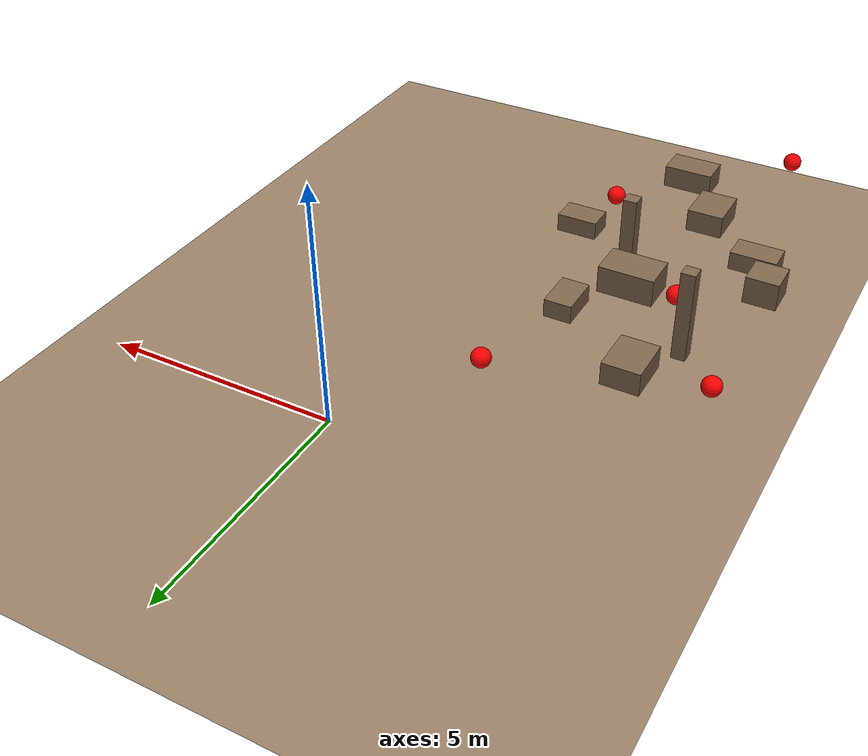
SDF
<sdf version="1.8">
 <world name="disaster_world">
  <physics name="1ms" type="ignored">
   <max_step_size>0.004</max_step_size>
   <real_time_factor>1.0</real_time_factor>
  </physics>
  <plugin filename="gz-sim-physics-system" name="gz::sim::systems::Physics"/>
  <plugin filename="gz-sim-scene-broadcaster-system" name="gz::sim::systems::SceneBroadcaster"/>
  <plugin filename="gz-sim-user-commands-system" name="gz::sim::systems::UserCommands"/>
  <plugin filename="gz-sim-sensors-system" name="gz::sim::systems::Sensors">
   <render_engine>ogre2</render_engine>
  </plugin>
  <plugin filename="gz-sim-imu-system" name="gz::sim::systems::Imu"/>
  <light name="sun" type="directional">
   <cast_shadows>false</cast_shadows>
   <pose>0 0 20 0 0 0</pose>
   <diffuse>1.0 1.0 1.0 1</diffuse>
   <specular>0.5 0.5 0.5 1</specular>
   <attenuation>
    <range>1000</range>
    <constant>0.9</constant>
    <linear>0.01</linear>
    <quadratic>0.001</quadratic>
   </attenuation>
   <direction>-0.3 0.1 -0.9</direction>
  </light>
  <light name="ambient_fill" type="directional">
   <cast_shadows>false</cast_shadows>
   <pose>0 0 10 0 0 0</pose>
   <diffuse>0.4 0.4 0.4 1</diffuse>
   <specular>0.1 0.1 0.1 1</specular>
   <direction>0.3 -0.1 -0.9</direction>
  </light>
  <model name="ground_plane">
   <static>true</static>
   <link name="link">
    <collision name="collision">
     <geometry><plane><normal>0 0 1</normal><size>50 50</size></plane></geometry>
    </collision>
    <visual name="visual">
     <geometry><plane><normal>0 0 1</normal><size>50 50</size></plane></geometry>
     <material><ambient>0.6 0.5 0.4 1</ambient><diffuse>0.6 0.5 0.4 1</diffuse></material>
    </visual>
   </link>
  </model>
  <model name="victim_1">
   <static>true</static>
   <pose>-4.61 -5.54 1.0 0 0 0</pose>
   <link name="link">
    <visual name="visual">
     <geometry><sphere><radius>0.2</radius></sphere></geometry>
     <material>
      <ambient>1.0 0.0 0.0 1</ambient>
      <diffuse>1.0 0.0 0.0 1</diffuse>
      <emissive>0.8 0.0 0.0 1</emissive>
     </material>
    </visual>
    <collision name="collision"><geometry><sphere><radius>0.2</radius></sphere></geometry></collision>
   </link>
  </model>
  <model name="victim_2">
   <static>true</static>
   <pose>-5.06 -11.97 1.0 0 0 0</pose>
   <link name="link">
    <visual name="visual">
     <geometry><sphere><radius>0.2</radius></sphere></geometry>
     <material>
      <ambient>1.0 0.0 0.0 1</ambient>
      <diffuse>1.0 0.0 0.0 1</diffuse>
      <emissive>0.8 0.0 0.0 1</emissive>
     </material>
    </visual>
    <collision name="collision"><geometry><sphere><radius>0.2</radius></sphere></geometry></collision>
   </link>
  </model>
  <model name="victim_3">
   <static>true</static>
   <pose>-2.05 -8.6 1.0 0 0 0</pose>
   <link name="link">
    <visual name="visual">
     <geometry><sphere><radius>0.2</radius></sphere></geometry>
     <material>
      <ambient>1.0 0.0 0.0 1</ambient>
      <diffuse>1.0 0.0 0.0 1</diffuse>
      <emissive>0.8 0.0 0.0 1</emissive>
     </material>
    </visual>
    <collision name="collision"><geometry><sphere><radius>0.2</radius></sphere></geometry></collision>
   </link>
  </model>
  <model name="victim_4">
   <static>true</static>
   <pose>-2.17 -1.91 1.0 0 0 0</pose>
   <link name="link">
    <visual name="visual">
     <geometry><sphere><radius>0.2</radius></sphere></geometry>
     <material>
      <ambient>1.0 0.0 0.0 1</ambient>
      <diffuse>1.0 0.0 0.0 1</diffuse>
      <emissive>0.8 0.0 0.0 1</emissive>
     </material>
    </visual>
    <collision name="collision"><geometry><sphere><radius>0.2</radius></sphere></geometry></collision>
   </link>
  </model>
  <model name="victim_5">
   <static>true</static>
   <pose>-6.19 -3.13 1.0 0 0 0</pose>
   <link name="link">
    <visual name="visual">
     <geometry><sphere><radius>0.2</radius></sphere></geometry>
     <material>
      <ambient>1.0 0.0 0.0 1</ambient>
      <diffuse>1.0 0.0 0.0 1</diffuse>
      <emissive>0.8 0.0 0.0 1</emissive>
     </material>
    </visual>
    <collision name="collision"><geometry><sphere><radius>0.2</radius></sphere></geometry></collision>
   </link>
  </model>
  <model name="rubble_1">
   <static>true</static>
   <pose>-3.5 -6.0 0.8 0 0 0</pose>
   <link name="link">
    <visual name="visual">
     <geometry><box><size>1.2 0.8 0.6</size></box></geometry>
     <material><ambient>0.5 0.4 0.3 1</ambient><diffuse>0.5 0.4 0.3 1</diffuse></material>
    </visual>
    <collision name="collision"><geometry><box><size>1.2 0.8 0.6</size></box></geometry></collision>
   </link>
  </model>
  <model name="rubble_2">
   <static>true</static>
   <pose>-4.0 -9.5 0.6 0 0 0</pose>
   <link name="link">
    <visual name="visual">
     <geometry><box><size>0.8 1.0 0.5</size></box></geometry>
     <material><ambient>0.5 0.4 0.3 1</ambient><diffuse>0.5 0.4 0.3 1</diffuse></material>
    </visual>
    <collision name="collision"><geometry><box><size>0.8 1.0 0.5</size></box></geometry></collision>
   </link>
  </model>
  <model name="rubble_3">
   <static>true</static>
   <pose>-5.5 -8.0 0.7 0 0 0</pose>
   <link name="link">
    <visual name="visual">
     <geometry><box><size>1.0 0.6 0.4</size></box></geometry>
     <material><ambient>0.5 0.4 0.3 1</ambient><diffuse>0.5 0.4 0.3 1</diffuse></material>
    </visual>
    <collision name="collision"><geometry><box><size>1.0 0.6 0.4</size></box></geometry></collision>
   </link>
  </model>
  <model name="rubble_4">
   <static>true</static>
   <pose>-2.5 -5.0 0.5 0 0 0</pose>
   <link name="link">
    <visual name="visual">
     <geometry><box><size>0.6 0.9 0.4</size></box></geometry>
     <material><ambient>0.5 0.4 0.3 1</ambient><diffuse>0.5 0.4 0.3 1</diffuse></material>
    </visual>
    <collision name="collision"><geometry><box><size>0.6 0.9 0.4</size></box></geometry></collision>
   </link>
  </model>
  <model name="rubble_5">
   <static>true</static>
   <pose>-3.0 -11.0 0.6 0 0 0</pose>
   <link name="link">
    <visual name="visual">
     <geometry><box><size>1.1 0.7 0.5</size></box></geometry>
     <material><ambient>0.5 0.4 0.3 1</ambient><diffuse>0.5 0.4 0.3 1</diffuse></material>
    </visual>
    <collision name="collision"><geometry><box><size>1.1 0.7 0.5</size></box></geometry></collision>
   </link>
  </model>
  <model name="rubble_6">
   <static>true</static>
   <pose>-6.0 -7.0 0.8 0 0 0</pose>
   <link name="link">
    <visual name="visual">
     <geometry><box><size>0.7 0.7 0.6</size></box></geometry>
     <material><ambient>0.5 0.4 0.3 1</ambient><diffuse>0.5 0.4 0.3 1</diffuse></material>
    </visual>
    <collision name="collision"><geometry><box><size>0.7 0.7 0.6</size></box></geometry></collision>
   </link>
  </model>
  <model name="rubble_7">
   <static>true</static>
   <pose>-1.5 -8.0 0.5 0 0 0</pose>
   <link name="link">
    <visual name="visual">
     <geometry><box><size>0.9 0.6 0.4</size></box></geometry>
     <material><ambient>0.5 0.4 0.3 1</ambient><diffuse>0.5 0.4 0.3 1</diffuse></material>
    </visual>
    <collision name="collision"><geometry><box><size>0.9 0.6 0.4</size></box></geometry></collision>
   </link>
  </model>
  <model name="rubble_8">
   <static>true</static>
   <pose>-4.5 -3.5 0.6 0 0 0</pose>
   <link name="link">
    <visual name="visual">
     <geometry><box><size>0.8 1.0 0.5</size></box></geometry>
     <material><ambient>0.5 0.4 0.3 1</ambient><diffuse>0.5 0.4 0.3 1</diffuse></material>
    </visual>
    <collision name="collision"><geometry><box><size>0.8 1.0 0.5</size></box></geometry></collision>
   </link>
  </model>
  <model name="pillar_1">
   <static>true</static>
   <pose>-3.0 -7.0 1.0 0 0 0</pose>
   <link name="link">
    <visual name="visual">
     <geometry><box><size>0.3 0.3 2.0</size></box></geometry>
     <material><ambient>0.5 0.4 0.3 1</ambient><diffuse>0.5 0.4 0.3 1</diffuse></material>
    </visual>
    <collision name="collision"><geometry><box><size>0.3 0.3 2.0</size></box></geometry></collision>
   </link>
  </model>
  <model name="pillar_2">
   <static>true</static>
   <pose>-5.0 -5.0 1.0 0 0 0</pose>
   <link name="link">
    <visual name="visual">
     <geometry><box><size>0.3 0.3 2.0</size></box></geometry>
     <material><ambient>0.5 0.4 0.3 1</ambient><diffuse>0.5 0.4 0.3 1</diffuse></material>
    </visual>
    <collision name="collision"><geometry><box><size>0.3 0.3 2.0</size></box></geometry></collision>
   </link>
  </model>
 </world>
</sdf>
